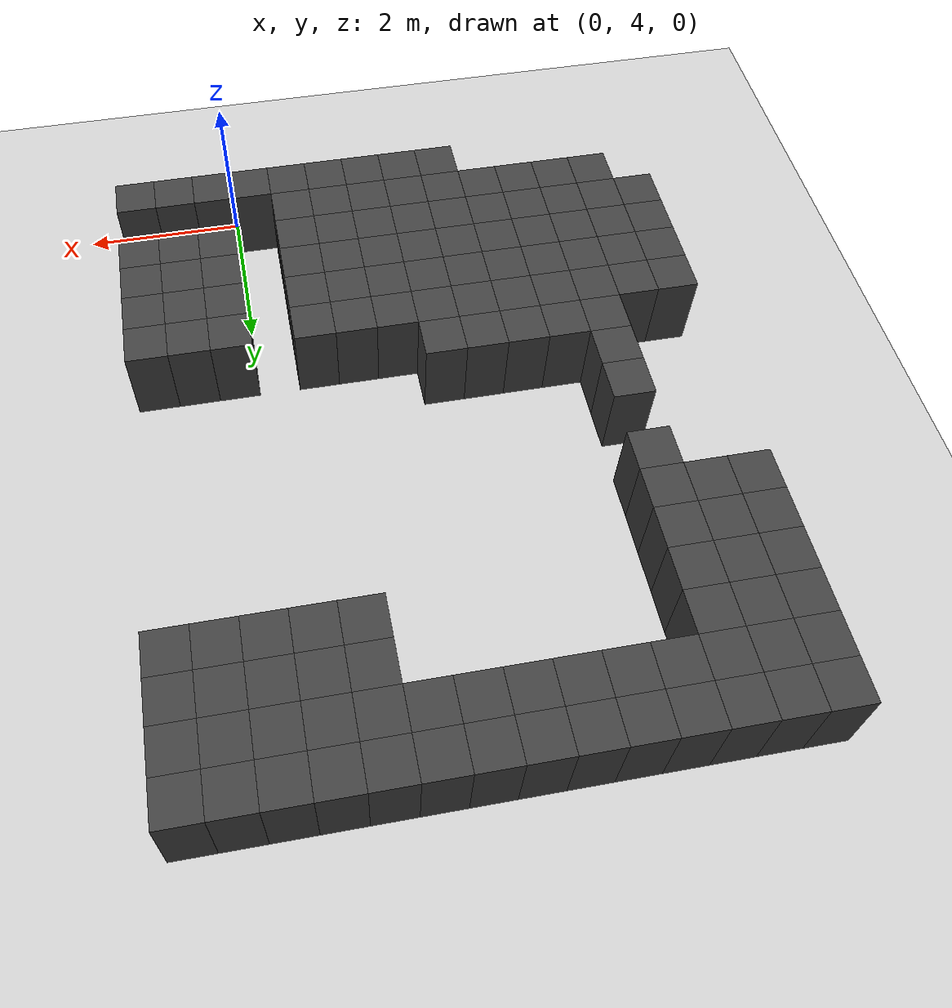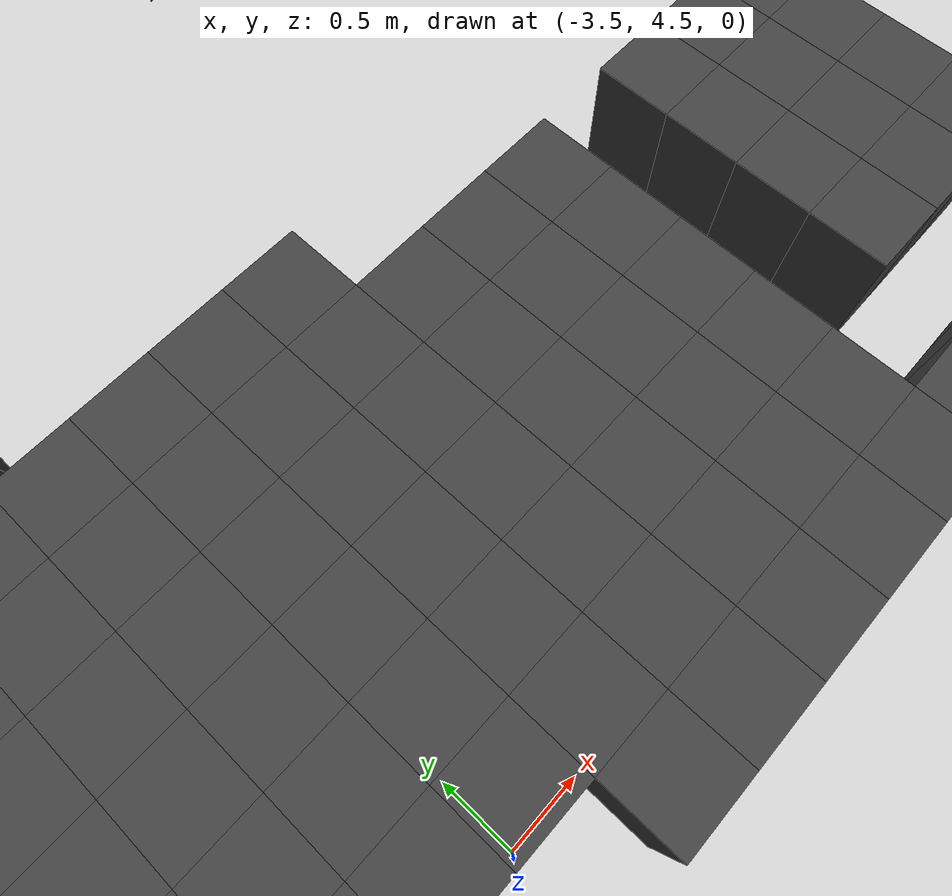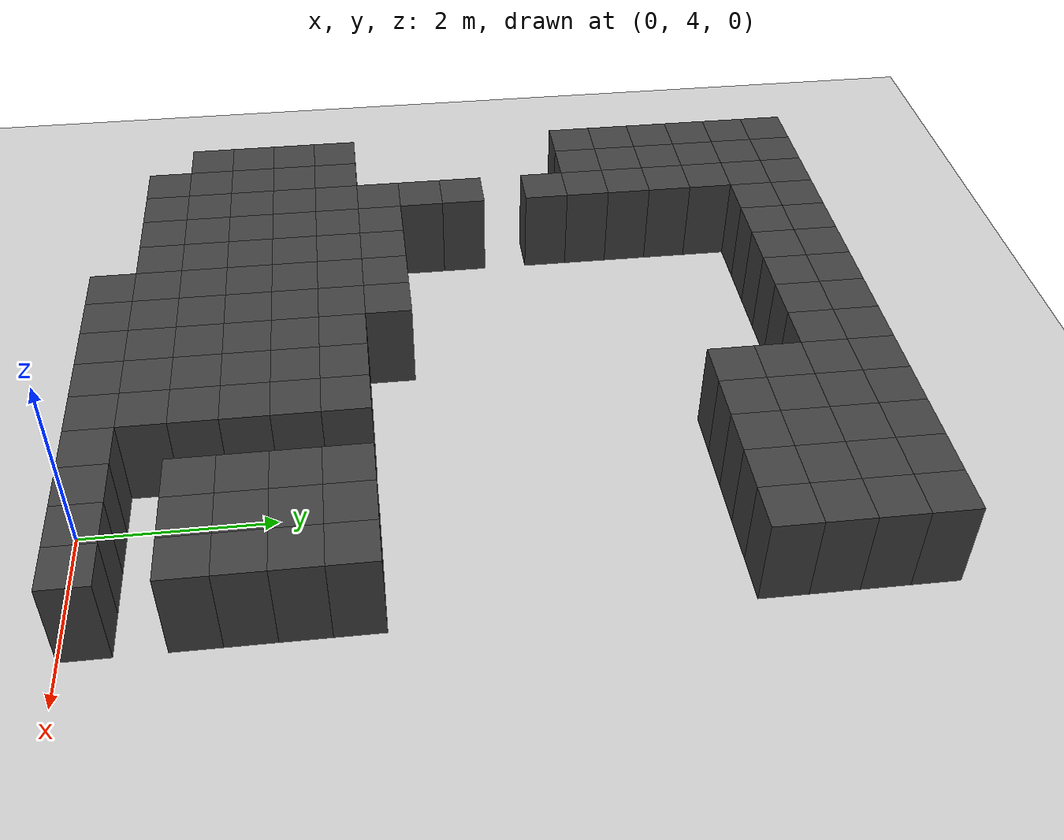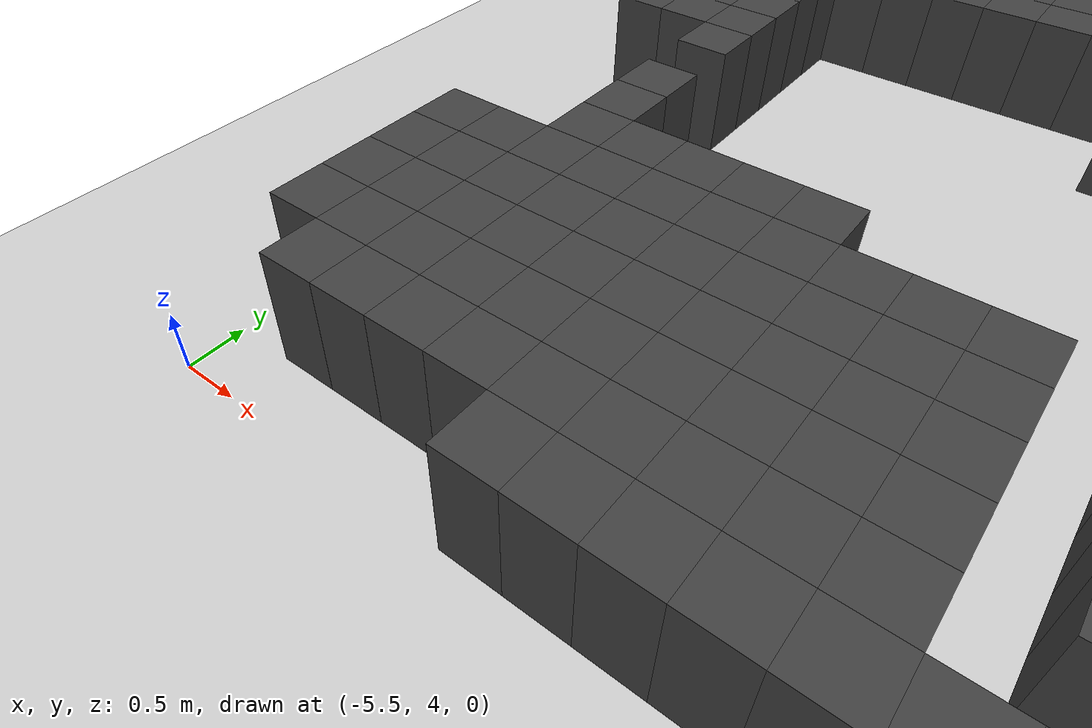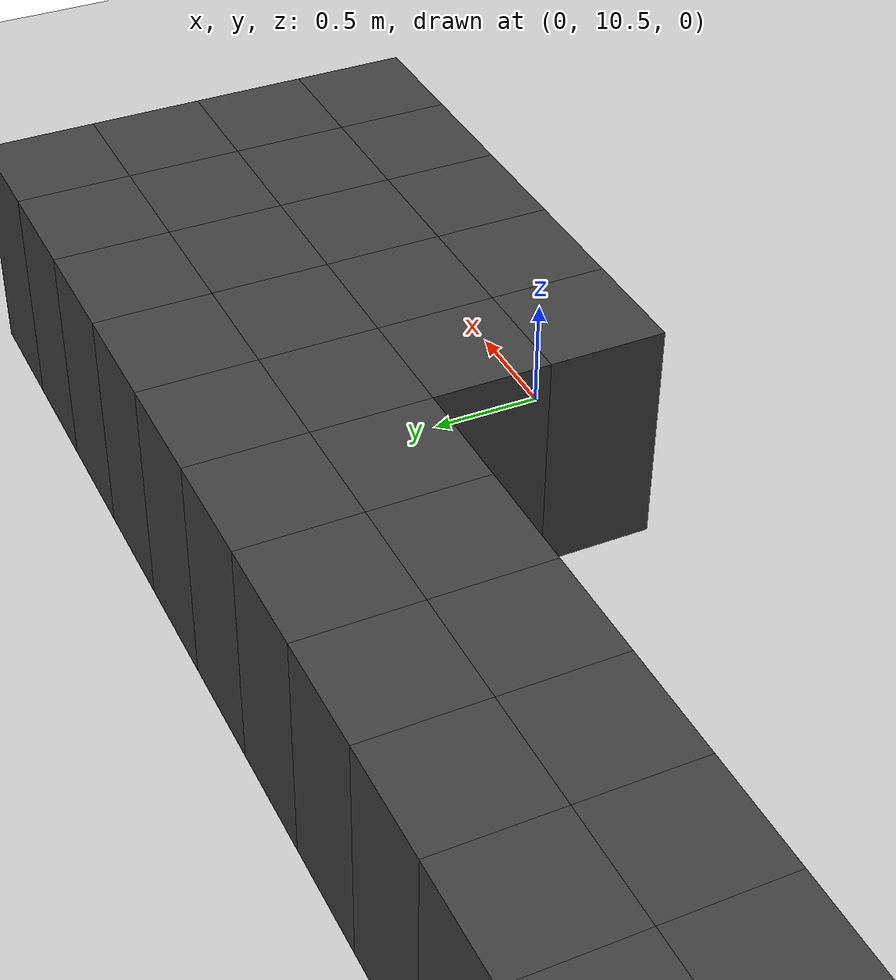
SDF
<sdf version="1.7">
 <world name="map_12356">
  <model name="ground_plane">
   <static>true</static>
   <link name="link">
    <collision name="collision">
     <geometry><plane><normal>0 0 1</normal><size>200 200</size></plane></geometry>
    </collision>
    <visual name="visual">
     <geometry><plane><normal>0 0 1</normal><size>200 200</size></plane></geometry>
     <material><ambient>0.8 0.8 0.8 1</ambient><diffuse>0.8 0.8 0.8 1</diffuse></material>
    </visual>
   </link>
  </model>
  <model name="maze_environment">
   <static>true</static>
   <link name="wall_14">
    <pose>-5.250 12.250 0.500 0 0 0</pose>
    <collision name="col"><geometry><box><size>0.5 0.5 1.0</size></box></geometry></collision>
    <visual name="vis">
     <geometry><box><size>0.5 0.5 1.0</size></box></geometry>
     <material><ambient>0.15 0.15 0.15 1</ambient><diffuse>0.25 0.25 0.25 1</diffuse></material>
    </visual>
   </link>
   <link name="wall_15">
    <pose>-4.750 12.250 0.500 0 0 0</pose>
    <collision name="col"><geometry><box><size>0.5 0.5 1.0</size></box></geometry></collision>
    <visual name="vis">
     <geometry><box><size>0.5 0.5 1.0</size></box></geometry>
     <material><ambient>0.15 0.15 0.15 1</ambient><diffuse>0.25 0.25 0.25 1</diffuse></material>
    </visual>
   </link>
   <link name="wall_16">
    <pose>-4.250 12.250 0.500 0 0 0</pose>
    <collision name="col"><geometry><box><size>0.5 0.5 1.0</size></box></geometry></collision>
    <visual name="vis">
     <geometry><box><size>0.5 0.5 1.0</size></box></geometry>
     <material><ambient>0.15 0.15 0.15 1</ambient><diffuse>0.25 0.25 0.25 1</diffuse></material>
    </visual>
   </link>
   <link name="wall_17">
    <pose>-3.750 12.250 0.500 0 0 0</pose>
    <collision name="col"><geometry><box><size>0.5 0.5 1.0</size></box></geometry></collision>
    <visual name="vis">
     <geometry><box><size>0.5 0.5 1.0</size></box></geometry>
     <material><ambient>0.15 0.15 0.15 1</ambient><diffuse>0.25 0.25 0.25 1</diffuse></material>
    </visual>
   </link>
   <link name="wall_18">
    <pose>-3.250 12.250 0.500 0 0 0</pose>
    <collision name="col"><geometry><box><size>0.5 0.5 1.0</size></box></geometry></collision>
    <visual name="vis">
     <geometry><box><size>0.5 0.5 1.0</size></box></geometry>
     <material><ambient>0.15 0.15 0.15 1</ambient><diffuse>0.25 0.25 0.25 1</diffuse></material>
    </visual>
   </link>
   <link name="wall_19">
    <pose>-2.750 12.250 0.500 0 0 0</pose>
    <collision name="col"><geometry><box><size>0.5 0.5 1.0</size></box></geometry></collision>
    <visual name="vis">
     <geometry><box><size>0.5 0.5 1.0</size></box></geometry>
     <material><ambient>0.15 0.15 0.15 1</ambient><diffuse>0.25 0.25 0.25 1</diffuse></material>
    </visual>
   </link>
   <link name="wall_20">
    <pose>-2.250 12.250 0.500 0 0 0</pose>
    <collision name="col"><geometry><box><size>0.5 0.5 1.0</size></box></geometry></collision>
    <visual name="vis">
     <geometry><box><size>0.5 0.5 1.0</size></box></geometry>
     <material><ambient>0.15 0.15 0.15 1</ambient><diffuse>0.25 0.25 0.25 1</diffuse></material>
    </visual>
   </link>
   <link name="wall_21">
    <pose>-1.750 12.250 0.500 0 0 0</pose>
    <collision name="col"><geometry><box><size>0.5 0.5 1.0</size></box></geometry></collision>
    <visual name="vis">
     <geometry><box><size>0.5 0.5 1.0</size></box></geometry>
     <material><ambient>0.15 0.15 0.15 1</ambient><diffuse>0.25 0.25 0.25 1</diffuse></material>
    </visual>
   </link>
   <link name="wall_22">
    <pose>-1.250 12.250 0.500 0 0 0</pose>
    <collision name="col"><geometry><box><size>0.5 0.5 1.0</size></box></geometry></collision>
    <visual name="vis">
     <geometry><box><size>0.5 0.5 1.0</size></box></geometry>
     <material><ambient>0.15 0.15 0.15 1</ambient><diffuse>0.25 0.25 0.25 1</diffuse></material>
    </visual>
   </link>
   <link name="wall_23">
    <pose>-0.750 12.250 0.500 0 0 0</pose>
    <collision name="col"><geometry><box><size>0.5 0.5 1.0</size></box></geometry></collision>
    <visual name="vis">
     <geometry><box><size>0.5 0.5 1.0</size></box></geometry>
     <material><ambient>0.15 0.15 0.15 1</ambient><diffuse>0.25 0.25 0.25 1</diffuse></material>
    </visual>
   </link>
   <link name="wall_24">
    <pose>-0.250 12.250 0.500 0 0 0</pose>
    <collision name="col"><geometry><box><size>0.5 0.5 1.0</size></box></geometry></collision>
    <visual name="vis">
     <geometry><box><size>0.5 0.5 1.0</size></box></geometry>
     <material><ambient>0.15 0.15 0.15 1</ambient><diffuse>0.25 0.25 0.25 1</diffuse></material>
    </visual>
   </link>
   <link name="wall_25">
    <pose>0.250 12.250 0.500 0 0 0</pose>
    <collision name="col"><geometry><box><size>0.5 0.5 1.0</size></box></geometry></collision>
    <visual name="vis">
     <geometry><box><size>0.5 0.5 1.0</size></box></geometry>
     <material><ambient>0.15 0.15 0.15 1</ambient><diffuse>0.25 0.25 0.25 1</diffuse></material>
    </visual>
   </link>
   <link name="wall_26">
    <pose>0.750 12.250 0.500 0 0 0</pose>
    <collision name="col"><geometry><box><size>0.5 0.5 1.0</size></box></geometry></collision>
    <visual name="vis">
     <geometry><box><size>0.5 0.5 1.0</size></box></geometry>
     <material><ambient>0.15 0.15 0.15 1</ambient><diffuse>0.25 0.25 0.25 1</diffuse></material>
    </visual>
   </link>
   <link name="wall_27">
    <pose>1.250 12.250 0.500 0 0 0</pose>
    <collision name="col"><geometry><box><size>0.5 0.5 1.0</size></box></geometry></collision>
    <visual name="vis">
     <geometry><box><size>0.5 0.5 1.0</size></box></geometry>
     <material><ambient>0.15 0.15 0.15 1</ambient><diffuse>0.25 0.25 0.25 1</diffuse></material>
    </visual>
   </link>
   <link name="wall_61">
    <pose>-5.250 11.750 0.500 0 0 0</pose>
    <collision name="col"><geometry><box><size>0.5 0.5 1.0</size></box></geometry></collision>
    <visual name="vis">
     <geometry><box><size>0.5 0.5 1.0</size></box></geometry>
     <material><ambient>0.15 0.15 0.15 1</ambient><diffuse>0.25 0.25 0.25 1</diffuse></material>
    </visual>
   </link>
   <link name="wall_62">
    <pose>-4.750 11.750 0.500 0 0 0</pose>
    <collision name="col"><geometry><box><size>0.5 0.5 1.0</size></box></geometry></collision>
    <visual name="vis">
     <geometry><box><size>0.5 0.5 1.0</size></box></geometry>
     <material><ambient>0.15 0.15 0.15 1</ambient><diffuse>0.25 0.25 0.25 1</diffuse></material>
    </visual>
   </link>
   <link name="wall_63">
    <pose>-4.250 11.750 0.500 0 0 0</pose>
    <collision name="col"><geometry><box><size>0.5 0.5 1.0</size></box></geometry></collision>
    <visual name="vis">
     <geometry><box><size>0.5 0.5 1.0</size></box></geometry>
     <material><ambient>0.15 0.15 0.15 1</ambient><diffuse>0.25 0.25 0.25 1</diffuse></material>
    </visual>
   </link>
   <link name="wall_64">
    <pose>-3.750 11.750 0.500 0 0 0</pose>
    <collision name="col"><geometry><box><size>0.5 0.5 1.0</size></box></geometry></collision>
    <visual name="vis">
     <geometry><box><size>0.5 0.5 1.0</size></box></geometry>
     <material><ambient>0.15 0.15 0.15 1</ambient><diffuse>0.25 0.25 0.25 1</diffuse></material>
    </visual>
   </link>
   <link name="wall_65">
    <pose>-3.250 11.750 0.500 0 0 0</pose>
    <collision name="col"><geometry><box><size>0.5 0.5 1.0</size></box></geometry></collision>
    <visual name="vis">
     <geometry><box><size>0.5 0.5 1.0</size></box></geometry>
     <material><ambient>0.15 0.15 0.15 1</ambient><diffuse>0.25 0.25 0.25 1</diffuse></material>
    </visual>
   </link>
   <link name="wall_66">
    <pose>-2.750 11.750 0.500 0 0 0</pose>
    <collision name="col"><geometry><box><size>0.5 0.5 1.0</size></box></geometry></collision>
    <visual name="vis">
     <geometry><box><size>0.5 0.5 1.0</size></box></geometry>
     <material><ambient>0.15 0.15 0.15 1</ambient><diffuse>0.25 0.25 0.25 1</diffuse></material>
    </visual>
   </link>
   <link name="wall_67">
    <pose>-2.250 11.750 0.500 0 0 0</pose>
    <collision name="col"><geometry><box><size>0.5 0.5 1.0</size></box></geometry></collision>
    <visual name="vis">
     <geometry><box><size>0.5 0.5 1.0</size></box></geometry>
     <material><ambient>0.15 0.15 0.15 1</ambient><diffuse>0.25 0.25 0.25 1</diffuse></material>
    </visual>
   </link>
   <link name="wall_68">
    <pose>-1.750 11.750 0.500 0 0 0</pose>
    <collision name="col"><geometry><box><size>0.5 0.5 1.0</size></box></geometry></collision>
    <visual name="vis">
     <geometry><box><size>0.5 0.5 1.0</size></box></geometry>
     <material><ambient>0.15 0.15 0.15 1</ambient><diffuse>0.25 0.25 0.25 1</diffuse></material>
    </visual>
   </link>
   <link name="wall_69">
    <pose>-1.250 11.750 0.500 0 0 0</pose>
    <collision name="col"><geometry><box><size>0.5 0.5 1.0</size></box></geometry></collision>
    <visual name="vis">
     <geometry><box><size>0.5 0.5 1.0</size></box></geometry>
     <material><ambient>0.15 0.15 0.15 1</ambient><diffuse>0.25 0.25 0.25 1</diffuse></material>
    </visual>
   </link>
   <link name="wall_70">
    <pose>-0.750 11.750 0.500 0 0 0</pose>
    <collision name="col"><geometry><box><size>0.5 0.5 1.0</size></box></geometry></collision>
    <visual name="vis">
     <geometry><box><size>0.5 0.5 1.0</size></box></geometry>
     <material><ambient>0.15 0.15 0.15 1</ambient><diffuse>0.25 0.25 0.25 1</diffuse></material>
    </visual>
   </link>
   <link name="wall_71">
    <pose>-0.250 11.750 0.500 0 0 0</pose>
    <collision name="col"><geometry><box><size>0.5 0.5 1.0</size></box></geometry></collision>
    <visual name="vis">
     <geometry><box><size>0.5 0.5 1.0</size></box></geometry>
     <material><ambient>0.15 0.15 0.15 1</ambient><diffuse>0.25 0.25 0.25 1</diffuse></material>
    </visual>
   </link>
   <link name="wall_72">
    <pose>0.250 11.750 0.500 0 0 0</pose>
    <collision name="col"><geometry><box><size>0.5 0.5 1.0</size></box></geometry></collision>
    <visual name="vis">
     <geometry><box><size>0.5 0.5 1.0</size></box></geometry>
     <material><ambient>0.15 0.15 0.15 1</ambient><diffuse>0.25 0.25 0.25 1</diffuse></material>
    </visual>
   </link>
   <link name="wall_73">
    <pose>0.750 11.750 0.500 0 0 0</pose>
    <collision name="col"><geometry><box><size>0.5 0.5 1.0</size></box></geometry></collision>
    <visual name="vis">
     <geometry><box><size>0.5 0.5 1.0</size></box></geometry>
     <material><ambient>0.15 0.15 0.15 1</ambient><diffuse>0.25 0.25 0.25 1</diffuse></material>
    </visual>
   </link>
   <link name="wall_74">
    <pose>1.250 11.750 0.500 0 0 0</pose>
    <collision name="col"><geometry><box><size>0.5 0.5 1.0</size></box></geometry></collision>
    <visual name="vis">
     <geometry><box><size>0.5 0.5 1.0</size></box></geometry>
     <material><ambient>0.15 0.15 0.15 1</ambient><diffuse>0.25 0.25 0.25 1</diffuse></material>
    </visual>
   </link>
   <link name="wall_108">
    <pose>-5.250 11.250 0.500 0 0 0</pose>
    <collision name="col"><geometry><box><size>0.5 0.5 1.0</size></box></geometry></collision>
    <visual name="vis">
     <geometry><box><size>0.5 0.5 1.0</size></box></geometry>
     <material><ambient>0.15 0.15 0.15 1</ambient><diffuse>0.25 0.25 0.25 1</diffuse></material>
    </visual>
   </link>
   <link name="wall_109">
    <pose>-4.750 11.250 0.500 0 0 0</pose>
    <collision name="col"><geometry><box><size>0.5 0.5 1.0</size></box></geometry></collision>
    <visual name="vis">
     <geometry><box><size>0.5 0.5 1.0</size></box></geometry>
     <material><ambient>0.15 0.15 0.15 1</ambient><diffuse>0.25 0.25 0.25 1</diffuse></material>
    </visual>
   </link>
   <link name="wall_110">
    <pose>-4.250 11.250 0.500 0 0 0</pose>
    <collision name="col"><geometry><box><size>0.5 0.5 1.0</size></box></geometry></collision>
    <visual name="vis">
     <geometry><box><size>0.5 0.5 1.0</size></box></geometry>
     <material><ambient>0.15 0.15 0.15 1</ambient><diffuse>0.25 0.25 0.25 1</diffuse></material>
    </visual>
   </link>
   <link name="wall_111">
    <pose>-0.750 11.250 0.500 0 0 0</pose>
    <collision name="col"><geometry><box><size>0.5 0.5 1.0</size></box></geometry></collision>
    <visual name="vis">
     <geometry><box><size>0.5 0.5 1.0</size></box></geometry>
     <material><ambient>0.15 0.15 0.15 1</ambient><diffuse>0.25 0.25 0.25 1</diffuse></material>
    </visual>
   </link>
   <link name="wall_112">
    <pose>-0.250 11.250 0.500 0 0 0</pose>
    <collision name="col"><geometry><box><size>0.5 0.5 1.0</size></box></geometry></collision>
    <visual name="vis">
     <geometry><box><size>0.5 0.5 1.0</size></box></geometry>
     <material><ambient>0.15 0.15 0.15 1</ambient><diffuse>0.25 0.25 0.25 1</diffuse></material>
    </visual>
   </link>
   <link name="wall_113">
    <pose>0.250 11.250 0.500 0 0 0</pose>
    <collision name="col"><geometry><box><size>0.5 0.5 1.0</size></box></geometry></collision>
    <visual name="vis">
     <geometry><box><size>0.5 0.5 1.0</size></box></geometry>
     <material><ambient>0.15 0.15 0.15 1</ambient><diffuse>0.25 0.25 0.25 1</diffuse></material>
    </visual>
   </link>
   <link name="wall_114">
    <pose>0.750 11.250 0.500 0 0 0</pose>
    <collision name="col"><geometry><box><size>0.5 0.5 1.0</size></box></geometry></collision>
    <visual name="vis">
     <geometry><box><size>0.5 0.5 1.0</size></box></geometry>
     <material><ambient>0.15 0.15 0.15 1</ambient><diffuse>0.25 0.25 0.25 1</diffuse></material>
    </visual>
   </link>
   <link name="wall_115">
    <pose>1.250 11.250 0.500 0 0 0</pose>
    <collision name="col"><geometry><box><size>0.5 0.5 1.0</size></box></geometry></collision>
    <visual name="vis">
     <geometry><box><size>0.5 0.5 1.0</size></box></geometry>
     <material><ambient>0.15 0.15 0.15 1</ambient><diffuse>0.25 0.25 0.25 1</diffuse></material>
    </visual>
   </link>
   <link name="wall_149">
    <pose>-5.250 10.750 0.500 0 0 0</pose>
    <collision name="col"><geometry><box><size>0.5 0.5 1.0</size></box></geometry></collision>
    <visual name="vis">
     <geometry><box><size>0.5 0.5 1.0</size></box></geometry>
     <material><ambient>0.15 0.15 0.15 1</ambient><diffuse>0.25 0.25 0.25 1</diffuse></material>
    </visual>
   </link>
   <link name="wall_150">
    <pose>-4.750 10.750 0.500 0 0 0</pose>
    <collision name="col"><geometry><box><size>0.5 0.5 1.0</size></box></geometry></collision>
    <visual name="vis">
     <geometry><box><size>0.5 0.5 1.0</size></box></geometry>
     <material><ambient>0.15 0.15 0.15 1</ambient><diffuse>0.25 0.25 0.25 1</diffuse></material>
    </visual>
   </link>
   <link name="wall_151">
    <pose>-4.250 10.750 0.500 0 0 0</pose>
    <collision name="col"><geometry><box><size>0.5 0.5 1.0</size></box></geometry></collision>
    <visual name="vis">
     <geometry><box><size>0.5 0.5 1.0</size></box></geometry>
     <material><ambient>0.15 0.15 0.15 1</ambient><diffuse>0.25 0.25 0.25 1</diffuse></material>
    </visual>
   </link>
   <link name="wall_152">
    <pose>-0.750 10.750 0.500 0 0 0</pose>
    <collision name="col"><geometry><box><size>0.5 0.5 1.0</size></box></geometry></collision>
    <visual name="vis">
     <geometry><box><size>0.5 0.5 1.0</size></box></geometry>
     <material><ambient>0.15 0.15 0.15 1</ambient><diffuse>0.25 0.25 0.25 1</diffuse></material>
    </visual>
   </link>
   <link name="wall_153">
    <pose>-0.250 10.750 0.500 0 0 0</pose>
    <collision name="col"><geometry><box><size>0.5 0.5 1.0</size></box></geometry></collision>
    <visual name="vis">
     <geometry><box><size>0.5 0.5 1.0</size></box></geometry>
     <material><ambient>0.15 0.15 0.15 1</ambient><diffuse>0.25 0.25 0.25 1</diffuse></material>
    </visual>
   </link>
   <link name="wall_154">
    <pose>0.250 10.750 0.500 0 0 0</pose>
    <collision name="col"><geometry><box><size>0.5 0.5 1.0</size></box></geometry></collision>
    <visual name="vis">
     <geometry><box><size>0.5 0.5 1.0</size></box></geometry>
     <material><ambient>0.15 0.15 0.15 1</ambient><diffuse>0.25 0.25 0.25 1</diffuse></material>
    </visual>
   </link>
   <link name="wall_155">
    <pose>0.750 10.750 0.500 0 0 0</pose>
    <collision name="col"><geometry><box><size>0.5 0.5 1.0</size></box></geometry></collision>
    <visual name="vis">
     <geometry><box><size>0.5 0.5 1.0</size></box></geometry>
     <material><ambient>0.15 0.15 0.15 1</ambient><diffuse>0.25 0.25 0.25 1</diffuse></material>
    </visual>
   </link>
   <link name="wall_156">
    <pose>1.250 10.750 0.500 0 0 0</pose>
    <collision name="col"><geometry><box><size>0.5 0.5 1.0</size></box></geometry></collision>
    <visual name="vis">
     <geometry><box><size>0.5 0.5 1.0</size></box></geometry>
     <material><ambient>0.15 0.15 0.15 1</ambient><diffuse>0.25 0.25 0.25 1</diffuse></material>
    </visual>
   </link>
   <link name="wall_186">
    <pose>-5.250 10.250 0.500 0 0 0</pose>
    <collision name="col"><geometry><box><size>0.5 0.5 1.0</size></box></geometry></collision>
    <visual name="vis">
     <geometry><box><size>0.5 0.5 1.0</size></box></geometry>
     <material><ambient>0.15 0.15 0.15 1</ambient><diffuse>0.25 0.25 0.25 1</diffuse></material>
    </visual>
   </link>
   <link name="wall_187">
    <pose>-4.750 10.250 0.500 0 0 0</pose>
    <collision name="col"><geometry><box><size>0.5 0.5 1.0</size></box></geometry></collision>
    <visual name="vis">
     <geometry><box><size>0.5 0.5 1.0</size></box></geometry>
     <material><ambient>0.15 0.15 0.15 1</ambient><diffuse>0.25 0.25 0.25 1</diffuse></material>
    </visual>
   </link>
   <link name="wall_188">
    <pose>-4.250 10.250 0.500 0 0 0</pose>
    <collision name="col"><geometry><box><size>0.5 0.5 1.0</size></box></geometry></collision>
    <visual name="vis">
     <geometry><box><size>0.5 0.5 1.0</size></box></geometry>
     <material><ambient>0.15 0.15 0.15 1</ambient><diffuse>0.25 0.25 0.25 1</diffuse></material>
    </visual>
   </link>
   <link name="wall_218">
    <pose>-5.250 9.750 0.500 0 0 0</pose>
    <collision name="col"><geometry><box><size>0.5 0.5 1.0</size></box></geometry></collision>
    <visual name="vis">
     <geometry><box><size>0.5 0.5 1.0</size></box></geometry>
     <material><ambient>0.15 0.15 0.15 1</ambient><diffuse>0.25 0.25 0.25 1</diffuse></material>
    </visual>
   </link>
   <link name="wall_219">
    <pose>-4.750 9.750 0.500 0 0 0</pose>
    <collision name="col"><geometry><box><size>0.5 0.5 1.0</size></box></geometry></collision>
    <visual name="vis">
     <geometry><box><size>0.5 0.5 1.0</size></box></geometry>
     <material><ambient>0.15 0.15 0.15 1</ambient><diffuse>0.25 0.25 0.25 1</diffuse></material>
    </visual>
   </link>
   <link name="wall_220">
    <pose>-4.250 9.750 0.500 0 0 0</pose>
    <collision name="col"><geometry><box><size>0.5 0.5 1.0</size></box></geometry></collision>
    <visual name="vis">
     <geometry><box><size>0.5 0.5 1.0</size></box></geometry>
     <material><ambient>0.15 0.15 0.15 1</ambient><diffuse>0.25 0.25 0.25 1</diffuse></material>
    </visual>
   </link>
   <link name="wall_245">
    <pose>-4.250 9.250 0.500 0 0 0</pose>
    <collision name="col"><geometry><box><size>0.5 0.5 1.0</size></box></geometry></collision>
    <visual name="vis">
     <geometry><box><size>0.5 0.5 1.0</size></box></geometry>
     <material><ambient>0.15 0.15 0.15 1</ambient><diffuse>0.25 0.25 0.25 1</diffuse></material>
    </visual>
   </link>
   <link name="wall_294">
    <pose>-4.250 8.250 0.500 0 0 0</pose>
    <collision name="col"><geometry><box><size>0.5 0.5 1.0</size></box></geometry></collision>
    <visual name="vis">
     <geometry><box><size>0.5 0.5 1.0</size></box></geometry>
     <material><ambient>0.15 0.15 0.15 1</ambient><diffuse>0.25 0.25 0.25 1</diffuse></material>
    </visual>
   </link>
   <link name="wall_323">
    <pose>-4.250 7.750 0.500 0 0 0</pose>
    <collision name="col"><geometry><box><size>0.5 0.5 1.0</size></box></geometry></collision>
    <visual name="vis">
     <geometry><box><size>0.5 0.5 1.0</size></box></geometry>
     <material><ambient>0.15 0.15 0.15 1</ambient><diffuse>0.25 0.25 0.25 1</diffuse></material>
    </visual>
   </link>
   <link name="wall_355">
    <pose>-4.250 7.250 0.500 0 0 0</pose>
    <collision name="col"><geometry><box><size>0.5 0.5 1.0</size></box></geometry></collision>
    <visual name="vis">
     <geometry><box><size>0.5 0.5 1.0</size></box></geometry>
     <material><ambient>0.15 0.15 0.15 1</ambient><diffuse>0.25 0.25 0.25 1</diffuse></material>
    </visual>
   </link>
   <link name="wall_356">
    <pose>-3.750 7.250 0.500 0 0 0</pose>
    <collision name="col"><geometry><box><size>0.5 0.5 1.0</size></box></geometry></collision>
    <visual name="vis">
     <geometry><box><size>0.5 0.5 1.0</size></box></geometry>
     <material><ambient>0.15 0.15 0.15 1</ambient><diffuse>0.25 0.25 0.25 1</diffuse></material>
    </visual>
   </link>
   <link name="wall_357">
    <pose>-3.250 7.250 0.500 0 0 0</pose>
    <collision name="col"><geometry><box><size>0.5 0.5 1.0</size></box></geometry></collision>
    <visual name="vis">
     <geometry><box><size>0.5 0.5 1.0</size></box></geometry>
     <material><ambient>0.15 0.15 0.15 1</ambient><diffuse>0.25 0.25 0.25 1</diffuse></material>
    </visual>
   </link>
   <link name="wall_358">
    <pose>-2.750 7.250 0.500 0 0 0</pose>
    <collision name="col"><geometry><box><size>0.5 0.5 1.0</size></box></geometry></collision>
    <visual name="vis">
     <geometry><box><size>0.5 0.5 1.0</size></box></geometry>
     <material><ambient>0.15 0.15 0.15 1</ambient><diffuse>0.25 0.25 0.25 1</diffuse></material>
    </visual>
   </link>
   <link name="wall_359">
    <pose>-2.250 7.250 0.500 0 0 0</pose>
    <collision name="col"><geometry><box><size>0.5 0.5 1.0</size></box></geometry></collision>
    <visual name="vis">
     <geometry><box><size>0.5 0.5 1.0</size></box></geometry>
     <material><ambient>0.15 0.15 0.15 1</ambient><diffuse>0.25 0.25 0.25 1</diffuse></material>
    </visual>
   </link>
   <link name="wall_395">
    <pose>-5.250 6.750 0.500 0 0 0</pose>
    <collision name="col"><geometry><box><size>0.5 0.5 1.0</size></box></geometry></collision>
    <visual name="vis">
     <geometry><box><size>0.5 0.5 1.0</size></box></geometry>
     <material><ambient>0.15 0.15 0.15 1</ambient><diffuse>0.25 0.25 0.25 1</diffuse></material>
    </visual>
   </link>
   <link name="wall_396">
    <pose>-4.750 6.750 0.500 0 0 0</pose>
    <collision name="col"><geometry><box><size>0.5 0.5 1.0</size></box></geometry></collision>
    <visual name="vis">
     <geometry><box><size>0.5 0.5 1.0</size></box></geometry>
     <material><ambient>0.15 0.15 0.15 1</ambient><diffuse>0.25 0.25 0.25 1</diffuse></material>
    </visual>
   </link>
   <link name="wall_397">
    <pose>-4.250 6.750 0.500 0 0 0</pose>
    <collision name="col"><geometry><box><size>0.5 0.5 1.0</size></box></geometry></collision>
    <visual name="vis">
     <geometry><box><size>0.5 0.5 1.0</size></box></geometry>
     <material><ambient>0.15 0.15 0.15 1</ambient><diffuse>0.25 0.25 0.25 1</diffuse></material>
    </visual>
   </link>
   <link name="wall_398">
    <pose>-3.750 6.750 0.500 0 0 0</pose>
    <collision name="col"><geometry><box><size>0.5 0.5 1.0</size></box></geometry></collision>
    <visual name="vis">
     <geometry><box><size>0.5 0.5 1.0</size></box></geometry>
     <material><ambient>0.15 0.15 0.15 1</ambient><diffuse>0.25 0.25 0.25 1</diffuse></material>
    </visual>
   </link>
   <link name="wall_399">
    <pose>-3.250 6.750 0.500 0 0 0</pose>
    <collision name="col"><geometry><box><size>0.5 0.5 1.0</size></box></geometry></collision>
    <visual name="vis">
     <geometry><box><size>0.5 0.5 1.0</size></box></geometry>
     <material><ambient>0.15 0.15 0.15 1</ambient><diffuse>0.25 0.25 0.25 1</diffuse></material>
    </visual>
   </link>
   <link name="wall_400">
    <pose>-2.750 6.750 0.500 0 0 0</pose>
    <collision name="col"><geometry><box><size>0.5 0.5 1.0</size></box></geometry></collision>
    <visual name="vis">
     <geometry><box><size>0.5 0.5 1.0</size></box></geometry>
     <material><ambient>0.15 0.15 0.15 1</ambient><diffuse>0.25 0.25 0.25 1</diffuse></material>
    </visual>
   </link>
   <link name="wall_401">
    <pose>-2.250 6.750 0.500 0 0 0</pose>
    <collision name="col"><geometry><box><size>0.5 0.5 1.0</size></box></geometry></collision>
    <visual name="vis">
     <geometry><box><size>0.5 0.5 1.0</size></box></geometry>
     <material><ambient>0.15 0.15 0.15 1</ambient><diffuse>0.25 0.25 0.25 1</diffuse></material>
    </visual>
   </link>
   <link name="wall_402">
    <pose>-1.750 6.750 0.500 0 0 0</pose>
    <collision name="col"><geometry><box><size>0.5 0.5 1.0</size></box></geometry></collision>
    <visual name="vis">
     <geometry><box><size>0.5 0.5 1.0</size></box></geometry>
     <material><ambient>0.15 0.15 0.15 1</ambient><diffuse>0.25 0.25 0.25 1</diffuse></material>
    </visual>
   </link>
   <link name="wall_403">
    <pose>-1.250 6.750 0.500 0 0 0</pose>
    <collision name="col"><geometry><box><size>0.5 0.5 1.0</size></box></geometry></collision>
    <visual name="vis">
     <geometry><box><size>0.5 0.5 1.0</size></box></geometry>
     <material><ambient>0.15 0.15 0.15 1</ambient><diffuse>0.25 0.25 0.25 1</diffuse></material>
    </visual>
   </link>
   <link name="wall_404">
    <pose>-0.750 6.750 0.500 0 0 0</pose>
    <collision name="col"><geometry><box><size>0.5 0.5 1.0</size></box></geometry></collision>
    <visual name="vis">
     <geometry><box><size>0.5 0.5 1.0</size></box></geometry>
     <material><ambient>0.15 0.15 0.15 1</ambient><diffuse>0.25 0.25 0.25 1</diffuse></material>
    </visual>
   </link>
   <link name="wall_405">
    <pose>0.250 6.750 0.500 0 0 0</pose>
    <collision name="col"><geometry><box><size>0.5 0.5 1.0</size></box></geometry></collision>
    <visual name="vis">
     <geometry><box><size>0.5 0.5 1.0</size></box></geometry>
     <material><ambient>0.15 0.15 0.15 1</ambient><diffuse>0.25 0.25 0.25 1</diffuse></material>
    </visual>
   </link>
   <link name="wall_406">
    <pose>0.750 6.750 0.500 0 0 0</pose>
    <collision name="col"><geometry><box><size>0.5 0.5 1.0</size></box></geometry></collision>
    <visual name="vis">
     <geometry><box><size>0.5 0.5 1.0</size></box></geometry>
     <material><ambient>0.15 0.15 0.15 1</ambient><diffuse>0.25 0.25 0.25 1</diffuse></material>
    </visual>
   </link>
   <link name="wall_407">
    <pose>1.250 6.750 0.500 0 0 0</pose>
    <collision name="col"><geometry><box><size>0.5 0.5 1.0</size></box></geometry></collision>
    <visual name="vis">
     <geometry><box><size>0.5 0.5 1.0</size></box></geometry>
     <material><ambient>0.15 0.15 0.15 1</ambient><diffuse>0.25 0.25 0.25 1</diffuse></material>
    </visual>
   </link>
   <link name="wall_439">
    <pose>-5.250 6.250 0.500 0 0 0</pose>
    <collision name="col"><geometry><box><size>0.5 0.5 1.0</size></box></geometry></collision>
    <visual name="vis">
     <geometry><box><size>0.5 0.5 1.0</size></box></geometry>
     <material><ambient>0.15 0.15 0.15 1</ambient><diffuse>0.25 0.25 0.25 1</diffuse></material>
    </visual>
   </link>
   <link name="wall_440">
    <pose>-4.750 6.250 0.500 0 0 0</pose>
    <collision name="col"><geometry><box><size>0.5 0.5 1.0</size></box></geometry></collision>
    <visual name="vis">
     <geometry><box><size>0.5 0.5 1.0</size></box></geometry>
     <material><ambient>0.15 0.15 0.15 1</ambient><diffuse>0.25 0.25 0.25 1</diffuse></material>
    </visual>
   </link>
   <link name="wall_441">
    <pose>-4.250 6.250 0.500 0 0 0</pose>
    <collision name="col"><geometry><box><size>0.5 0.5 1.0</size></box></geometry></collision>
    <visual name="vis">
     <geometry><box><size>0.5 0.5 1.0</size></box></geometry>
     <material><ambient>0.15 0.15 0.15 1</ambient><diffuse>0.25 0.25 0.25 1</diffuse></material>
    </visual>
   </link>
   <link name="wall_442">
    <pose>-3.750 6.250 0.500 0 0 0</pose>
    <collision name="col"><geometry><box><size>0.5 0.5 1.0</size></box></geometry></collision>
    <visual name="vis">
     <geometry><box><size>0.5 0.5 1.0</size></box></geometry>
     <material><ambient>0.15 0.15 0.15 1</ambient><diffuse>0.25 0.25 0.25 1</diffuse></material>
    </visual>
   </link>
   <link name="wall_443">
    <pose>-3.250 6.250 0.500 0 0 0</pose>
    <collision name="col"><geometry><box><size>0.5 0.5 1.0</size></box></geometry></collision>
    <visual name="vis">
     <geometry><box><size>0.5 0.5 1.0</size></box></geometry>
     <material><ambient>0.15 0.15 0.15 1</ambient><diffuse>0.25 0.25 0.25 1</diffuse></material>
    </visual>
   </link>
   <link name="wall_444">
    <pose>-2.750 6.250 0.500 0 0 0</pose>
    <collision name="col"><geometry><box><size>0.5 0.5 1.0</size></box></geometry></collision>
    <visual name="vis">
     <geometry><box><size>0.5 0.5 1.0</size></box></geometry>
     <material><ambient>0.15 0.15 0.15 1</ambient><diffuse>0.25 0.25 0.25 1</diffuse></material>
    </visual>
   </link>
   <link name="wall_445">
    <pose>-2.250 6.250 0.500 0 0 0</pose>
    <collision name="col"><geometry><box><size>0.5 0.5 1.0</size></box></geometry></collision>
    <visual name="vis">
     <geometry><box><size>0.5 0.5 1.0</size></box></geometry>
     <material><ambient>0.15 0.15 0.15 1</ambient><diffuse>0.25 0.25 0.25 1</diffuse></material>
    </visual>
   </link>
   <link name="wall_446">
    <pose>-1.750 6.250 0.500 0 0 0</pose>
    <collision name="col"><geometry><box><size>0.5 0.5 1.0</size></box></geometry></collision>
    <visual name="vis">
     <geometry><box><size>0.5 0.5 1.0</size></box></geometry>
     <material><ambient>0.15 0.15 0.15 1</ambient><diffuse>0.25 0.25 0.25 1</diffuse></material>
    </visual>
   </link>
   <link name="wall_447">
    <pose>-1.250 6.250 0.500 0 0 0</pose>
    <collision name="col"><geometry><box><size>0.5 0.5 1.0</size></box></geometry></collision>
    <visual name="vis">
     <geometry><box><size>0.5 0.5 1.0</size></box></geometry>
     <material><ambient>0.15 0.15 0.15 1</ambient><diffuse>0.25 0.25 0.25 1</diffuse></material>
    </visual>
   </link>
   <link name="wall_448">
    <pose>-0.750 6.250 0.500 0 0 0</pose>
    <collision name="col"><geometry><box><size>0.5 0.5 1.0</size></box></geometry></collision>
    <visual name="vis">
     <geometry><box><size>0.5 0.5 1.0</size></box></geometry>
     <material><ambient>0.15 0.15 0.15 1</ambient><diffuse>0.25 0.25 0.25 1</diffuse></material>
    </visual>
   </link>
   <link name="wall_449">
    <pose>0.250 6.250 0.500 0 0 0</pose>
    <collision name="col"><geometry><box><size>0.5 0.5 1.0</size></box></geometry></collision>
    <visual name="vis">
     <geometry><box><size>0.5 0.5 1.0</size></box></geometry>
     <material><ambient>0.15 0.15 0.15 1</ambient><diffuse>0.25 0.25 0.25 1</diffuse></material>
    </visual>
   </link>
   <link name="wall_450">
    <pose>0.750 6.250 0.500 0 0 0</pose>
    <collision name="col"><geometry><box><size>0.5 0.5 1.0</size></box></geometry></collision>
    <visual name="vis">
     <geometry><box><size>0.5 0.5 1.0</size></box></geometry>
     <material><ambient>0.15 0.15 0.15 1</ambient><diffuse>0.25 0.25 0.25 1</diffuse></material>
    </visual>
   </link>
   <link name="wall_451">
    <pose>1.250 6.250 0.500 0 0 0</pose>
    <collision name="col"><geometry><box><size>0.5 0.5 1.0</size></box></geometry></collision>
    <visual name="vis">
     <geometry><box><size>0.5 0.5 1.0</size></box></geometry>
     <material><ambient>0.15 0.15 0.15 1</ambient><diffuse>0.25 0.25 0.25 1</diffuse></material>
    </visual>
   </link>
   <link name="wall_483">
    <pose>-5.250 5.750 0.500 0 0 0</pose>
    <collision name="col"><geometry><box><size>0.5 0.5 1.0</size></box></geometry></collision>
    <visual name="vis">
     <geometry><box><size>0.5 0.5 1.0</size></box></geometry>
     <material><ambient>0.15 0.15 0.15 1</ambient><diffuse>0.25 0.25 0.25 1</diffuse></material>
    </visual>
   </link>
   <link name="wall_484">
    <pose>-4.750 5.750 0.500 0 0 0</pose>
    <collision name="col"><geometry><box><size>0.5 0.5 1.0</size></box></geometry></collision>
    <visual name="vis">
     <geometry><box><size>0.5 0.5 1.0</size></box></geometry>
     <material><ambient>0.15 0.15 0.15 1</ambient><diffuse>0.25 0.25 0.25 1</diffuse></material>
    </visual>
   </link>
   <link name="wall_485">
    <pose>-4.250 5.750 0.500 0 0 0</pose>
    <collision name="col"><geometry><box><size>0.5 0.5 1.0</size></box></geometry></collision>
    <visual name="vis">
     <geometry><box><size>0.5 0.5 1.0</size></box></geometry>
     <material><ambient>0.15 0.15 0.15 1</ambient><diffuse>0.25 0.25 0.25 1</diffuse></material>
    </visual>
   </link>
   <link name="wall_486">
    <pose>-3.750 5.750 0.500 0 0 0</pose>
    <collision name="col"><geometry><box><size>0.5 0.5 1.0</size></box></geometry></collision>
    <visual name="vis">
     <geometry><box><size>0.5 0.5 1.0</size></box></geometry>
     <material><ambient>0.15 0.15 0.15 1</ambient><diffuse>0.25 0.25 0.25 1</diffuse></material>
    </visual>
   </link>
   <link name="wall_487">
    <pose>-3.250 5.750 0.500 0 0 0</pose>
    <collision name="col"><geometry><box><size>0.5 0.5 1.0</size></box></geometry></collision>
    <visual name="vis">
     <geometry><box><size>0.5 0.5 1.0</size></box></geometry>
     <material><ambient>0.15 0.15 0.15 1</ambient><diffuse>0.25 0.25 0.25 1</diffuse></material>
    </visual>
   </link>
   <link name="wall_488">
    <pose>-2.750 5.750 0.500 0 0 0</pose>
    <collision name="col"><geometry><box><size>0.5 0.5 1.0</size></box></geometry></collision>
    <visual name="vis">
     <geometry><box><size>0.5 0.5 1.0</size></box></geometry>
     <material><ambient>0.15 0.15 0.15 1</ambient><diffuse>0.25 0.25 0.25 1</diffuse></material>
    </visual>
   </link>
   <link name="wall_489">
    <pose>-2.250 5.750 0.500 0 0 0</pose>
    <collision name="col"><geometry><box><size>0.5 0.5 1.0</size></box></geometry></collision>
    <visual name="vis">
     <geometry><box><size>0.5 0.5 1.0</size></box></geometry>
     <material><ambient>0.15 0.15 0.15 1</ambient><diffuse>0.25 0.25 0.25 1</diffuse></material>
    </visual>
   </link>
   <link name="wall_490">
    <pose>-1.750 5.750 0.500 0 0 0</pose>
    <collision name="col"><geometry><box><size>0.5 0.5 1.0</size></box></geometry></collision>
    <visual name="vis">
     <geometry><box><size>0.5 0.5 1.0</size></box></geometry>
     <material><ambient>0.15 0.15 0.15 1</ambient><diffuse>0.25 0.25 0.25 1</diffuse></material>
    </visual>
   </link>
   <link name="wall_491">
    <pose>-1.250 5.750 0.500 0 0 0</pose>
    <collision name="col"><geometry><box><size>0.5 0.5 1.0</size></box></geometry></collision>
    <visual name="vis">
     <geometry><box><size>0.5 0.5 1.0</size></box></geometry>
     <material><ambient>0.15 0.15 0.15 1</ambient><diffuse>0.25 0.25 0.25 1</diffuse></material>
    </visual>
   </link>
   <link name="wall_492">
    <pose>-0.750 5.750 0.500 0 0 0</pose>
    <collision name="col"><geometry><box><size>0.5 0.5 1.0</size></box></geometry></collision>
    <visual name="vis">
     <geometry><box><size>0.5 0.5 1.0</size></box></geometry>
     <material><ambient>0.15 0.15 0.15 1</ambient><diffuse>0.25 0.25 0.25 1</diffuse></material>
    </visual>
   </link>
   <link name="wall_493">
    <pose>0.250 5.750 0.500 0 0 0</pose>
    <collision name="col"><geometry><box><size>0.5 0.5 1.0</size></box></geometry></collision>
    <visual name="vis">
     <geometry><box><size>0.5 0.5 1.0</size></box></geometry>
     <material><ambient>0.15 0.15 0.15 1</ambient><diffuse>0.25 0.25 0.25 1</diffuse></material>
    </visual>
   </link>
   <link name="wall_494">
    <pose>0.750 5.750 0.500 0 0 0</pose>
    <collision name="col"><geometry><box><size>0.5 0.5 1.0</size></box></geometry></collision>
    <visual name="vis">
     <geometry><box><size>0.5 0.5 1.0</size></box></geometry>
     <material><ambient>0.15 0.15 0.15 1</ambient><diffuse>0.25 0.25 0.25 1</diffuse></material>
    </visual>
   </link>
   <link name="wall_495">
    <pose>1.250 5.750 0.500 0 0 0</pose>
    <collision name="col"><geometry><box><size>0.5 0.5 1.0</size></box></geometry></collision>
    <visual name="vis">
     <geometry><box><size>0.5 0.5 1.0</size></box></geometry>
     <material><ambient>0.15 0.15 0.15 1</ambient><diffuse>0.25 0.25 0.25 1</diffuse></material>
    </visual>
   </link>
   <link name="wall_527">
    <pose>-5.250 5.250 0.500 0 0 0</pose>
    <collision name="col"><geometry><box><size>0.5 0.5 1.0</size></box></geometry></collision>
    <visual name="vis">
     <geometry><box><size>0.5 0.5 1.0</size></box></geometry>
     <material><ambient>0.15 0.15 0.15 1</ambient><diffuse>0.25 0.25 0.25 1</diffuse></material>
    </visual>
   </link>
   <link name="wall_528">
    <pose>-4.750 5.250 0.500 0 0 0</pose>
    <collision name="col"><geometry><box><size>0.5 0.5 1.0</size></box></geometry></collision>
    <visual name="vis">
     <geometry><box><size>0.5 0.5 1.0</size></box></geometry>
     <material><ambient>0.15 0.15 0.15 1</ambient><diffuse>0.25 0.25 0.25 1</diffuse></material>
    </visual>
   </link>
   <link name="wall_529">
    <pose>-4.250 5.250 0.500 0 0 0</pose>
    <collision name="col"><geometry><box><size>0.5 0.5 1.0</size></box></geometry></collision>
    <visual name="vis">
     <geometry><box><size>0.5 0.5 1.0</size></box></geometry>
     <material><ambient>0.15 0.15 0.15 1</ambient><diffuse>0.25 0.25 0.25 1</diffuse></material>
    </visual>
   </link>
   <link name="wall_530">
    <pose>-3.750 5.250 0.500 0 0 0</pose>
    <collision name="col"><geometry><box><size>0.5 0.5 1.0</size></box></geometry></collision>
    <visual name="vis">
     <geometry><box><size>0.5 0.5 1.0</size></box></geometry>
     <material><ambient>0.15 0.15 0.15 1</ambient><diffuse>0.25 0.25 0.25 1</diffuse></material>
    </visual>
   </link>
   <link name="wall_531">
    <pose>-3.250 5.250 0.500 0 0 0</pose>
    <collision name="col"><geometry><box><size>0.5 0.5 1.0</size></box></geometry></collision>
    <visual name="vis">
     <geometry><box><size>0.5 0.5 1.0</size></box></geometry>
     <material><ambient>0.15 0.15 0.15 1</ambient><diffuse>0.25 0.25 0.25 1</diffuse></material>
    </visual>
   </link>
   <link name="wall_532">
    <pose>-2.750 5.250 0.500 0 0 0</pose>
    <collision name="col"><geometry><box><size>0.5 0.5 1.0</size></box></geometry></collision>
    <visual name="vis">
     <geometry><box><size>0.5 0.5 1.0</size></box></geometry>
     <material><ambient>0.15 0.15 0.15 1</ambient><diffuse>0.25 0.25 0.25 1</diffuse></material>
    </visual>
   </link>
   <link name="wall_533">
    <pose>-2.250 5.250 0.500 0 0 0</pose>
    <collision name="col"><geometry><box><size>0.5 0.5 1.0</size></box></geometry></collision>
    <visual name="vis">
     <geometry><box><size>0.5 0.5 1.0</size></box></geometry>
     <material><ambient>0.15 0.15 0.15 1</ambient><diffuse>0.25 0.25 0.25 1</diffuse></material>
    </visual>
   </link>
   <link name="wall_534">
    <pose>-1.750 5.250 0.500 0 0 0</pose>
    <collision name="col"><geometry><box><size>0.5 0.5 1.0</size></box></geometry></collision>
    <visual name="vis">
     <geometry><box><size>0.5 0.5 1.0</size></box></geometry>
     <material><ambient>0.15 0.15 0.15 1</ambient><diffuse>0.25 0.25 0.25 1</diffuse></material>
    </visual>
   </link>
   <link name="wall_535">
    <pose>-1.250 5.250 0.500 0 0 0</pose>
    <collision name="col"><geometry><box><size>0.5 0.5 1.0</size></box></geometry></collision>
    <visual name="vis">
     <geometry><box><size>0.5 0.5 1.0</size></box></geometry>
     <material><ambient>0.15 0.15 0.15 1</ambient><diffuse>0.25 0.25 0.25 1</diffuse></material>
    </visual>
   </link>
   <link name="wall_536">
    <pose>-0.750 5.250 0.500 0 0 0</pose>
    <collision name="col"><geometry><box><size>0.5 0.5 1.0</size></box></geometry></collision>
    <visual name="vis">
     <geometry><box><size>0.5 0.5 1.0</size></box></geometry>
     <material><ambient>0.15 0.15 0.15 1</ambient><diffuse>0.25 0.25 0.25 1</diffuse></material>
    </visual>
   </link>
   <link name="wall_537">
    <pose>0.250 5.250 0.500 0 0 0</pose>
    <collision name="col"><geometry><box><size>0.5 0.5 1.0</size></box></geometry></collision>
    <visual name="vis">
     <geometry><box><size>0.5 0.5 1.0</size></box></geometry>
     <material><ambient>0.15 0.15 0.15 1</ambient><diffuse>0.25 0.25 0.25 1</diffuse></material>
    </visual>
   </link>
   <link name="wall_538">
    <pose>0.750 5.250 0.500 0 0 0</pose>
    <collision name="col"><geometry><box><size>0.5 0.5 1.0</size></box></geometry></collision>
    <visual name="vis">
     <geometry><box><size>0.5 0.5 1.0</size></box></geometry>
     <material><ambient>0.15 0.15 0.15 1</ambient><diffuse>0.25 0.25 0.25 1</diffuse></material>
    </visual>
   </link>
   <link name="wall_539">
    <pose>1.250 5.250 0.500 0 0 0</pose>
    <collision name="col"><geometry><box><size>0.5 0.5 1.0</size></box></geometry></collision>
    <visual name="vis">
     <geometry><box><size>0.5 0.5 1.0</size></box></geometry>
     <material><ambient>0.15 0.15 0.15 1</ambient><diffuse>0.25 0.25 0.25 1</diffuse></material>
    </visual>
   </link>
   <link name="wall_572">
    <pose>-4.750 4.750 0.500 0 0 0</pose>
    <collision name="col"><geometry><box><size>0.5 0.5 1.0</size></box></geometry></collision>
    <visual name="vis">
     <geometry><box><size>0.5 0.5 1.0</size></box></geometry>
     <material><ambient>0.15 0.15 0.15 1</ambient><diffuse>0.25 0.25 0.25 1</diffuse></material>
    </visual>
   </link>
   <link name="wall_573">
    <pose>-4.250 4.750 0.500 0 0 0</pose>
    <collision name="col"><geometry><box><size>0.5 0.5 1.0</size></box></geometry></collision>
    <visual name="vis">
     <geometry><box><size>0.5 0.5 1.0</size></box></geometry>
     <material><ambient>0.15 0.15 0.15 1</ambient><diffuse>0.25 0.25 0.25 1</diffuse></material>
    </visual>
   </link>
   <link name="wall_574">
    <pose>-3.750 4.750 0.500 0 0 0</pose>
    <collision name="col"><geometry><box><size>0.5 0.5 1.0</size></box></geometry></collision>
    <visual name="vis">
     <geometry><box><size>0.5 0.5 1.0</size></box></geometry>
     <material><ambient>0.15 0.15 0.15 1</ambient><diffuse>0.25 0.25 0.25 1</diffuse></material>
    </visual>
   </link>
   <link name="wall_575">
    <pose>-3.250 4.750 0.500 0 0 0</pose>
    <collision name="col"><geometry><box><size>0.5 0.5 1.0</size></box></geometry></collision>
    <visual name="vis">
     <geometry><box><size>0.5 0.5 1.0</size></box></geometry>
     <material><ambient>0.15 0.15 0.15 1</ambient><diffuse>0.25 0.25 0.25 1</diffuse></material>
    </visual>
   </link>
   <link name="wall_576">
    <pose>-2.750 4.750 0.500 0 0 0</pose>
    <collision name="col"><geometry><box><size>0.5 0.5 1.0</size></box></geometry></collision>
    <visual name="vis">
     <geometry><box><size>0.5 0.5 1.0</size></box></geometry>
     <material><ambient>0.15 0.15 0.15 1</ambient><diffuse>0.25 0.25 0.25 1</diffuse></material>
    </visual>
   </link>
   <link name="wall_577">
    <pose>-2.250 4.750 0.500 0 0 0</pose>
    <collision name="col"><geometry><box><size>0.5 0.5 1.0</size></box></geometry></collision>
    <visual name="vis">
     <geometry><box><size>0.5 0.5 1.0</size></box></geometry>
     <material><ambient>0.15 0.15 0.15 1</ambient><diffuse>0.25 0.25 0.25 1</diffuse></material>
    </visual>
   </link>
   <link name="wall_578">
    <pose>-1.750 4.750 0.500 0 0 0</pose>
    <collision name="col"><geometry><box><size>0.5 0.5 1.0</size></box></geometry></collision>
    <visual name="vis">
     <geometry><box><size>0.5 0.5 1.0</size></box></geometry>
     <material><ambient>0.15 0.15 0.15 1</ambient><diffuse>0.25 0.25 0.25 1</diffuse></material>
    </visual>
   </link>
   <link name="wall_579">
    <pose>-1.250 4.750 0.500 0 0 0</pose>
    <collision name="col"><geometry><box><size>0.5 0.5 1.0</size></box></geometry></collision>
    <visual name="vis">
     <geometry><box><size>0.5 0.5 1.0</size></box></geometry>
     <material><ambient>0.15 0.15 0.15 1</ambient><diffuse>0.25 0.25 0.25 1</diffuse></material>
    </visual>
   </link>
   <link name="wall_580">
    <pose>-0.750 4.750 0.500 0 0 0</pose>
    <collision name="col"><geometry><box><size>0.5 0.5 1.0</size></box></geometry></collision>
    <visual name="vis">
     <geometry><box><size>0.5 0.5 1.0</size></box></geometry>
     <material><ambient>0.15 0.15 0.15 1</ambient><diffuse>0.25 0.25 0.25 1</diffuse></material>
    </visual>
   </link>
   <link name="wall_596">
    <pose>-2.750 4.250 0.500 0 0 0</pose>
    <collision name="col"><geometry><box><size>0.5 0.5 1.0</size></box></geometry></collision>
    <visual name="vis">
     <geometry><box><size>0.5 0.5 1.0</size></box></geometry>
     <material><ambient>0.15 0.15 0.15 1</ambient><diffuse>0.25 0.25 0.25 1</diffuse></material>
    </visual>
   </link>
   <link name="wall_597">
    <pose>-2.250 4.250 0.500 0 0 0</pose>
    <collision name="col"><geometry><box><size>0.5 0.5 1.0</size></box></geometry></collision>
    <visual name="vis">
     <geometry><box><size>0.5 0.5 1.0</size></box></geometry>
     <material><ambient>0.15 0.15 0.15 1</ambient><diffuse>0.25 0.25 0.25 1</diffuse></material>
    </visual>
   </link>
   <link name="wall_598">
    <pose>-1.750 4.250 0.500 0 0 0</pose>
    <collision name="col"><geometry><box><size>0.5 0.5 1.0</size></box></geometry></collision>
    <visual name="vis">
     <geometry><box><size>0.5 0.5 1.0</size></box></geometry>
     <material><ambient>0.15 0.15 0.15 1</ambient><diffuse>0.25 0.25 0.25 1</diffuse></material>
    </visual>
   </link>
   <link name="wall_599">
    <pose>-1.250 4.250 0.500 0 0 0</pose>
    <collision name="col"><geometry><box><size>0.5 0.5 1.0</size></box></geometry></collision>
    <visual name="vis">
     <geometry><box><size>0.5 0.5 1.0</size></box></geometry>
     <material><ambient>0.15 0.15 0.15 1</ambient><diffuse>0.25 0.25 0.25 1</diffuse></material>
    </visual>
   </link>
   <link name="wall_600">
    <pose>-0.750 4.250 0.500 0 0 0</pose>
    <collision name="col"><geometry><box><size>0.5 0.5 1.0</size></box></geometry></collision>
    <visual name="vis">
     <geometry><box><size>0.5 0.5 1.0</size></box></geometry>
     <material><ambient>0.15 0.15 0.15 1</ambient><diffuse>0.25 0.25 0.25 1</diffuse></material>
    </visual>
   </link>
   <link name="wall_601">
    <pose>-0.250 4.250 0.500 0 0 0</pose>
    <collision name="col"><geometry><box><size>0.5 0.5 1.0</size></box></geometry></collision>
    <visual name="vis">
     <geometry><box><size>0.5 0.5 1.0</size></box></geometry>
     <material><ambient>0.15 0.15 0.15 1</ambient><diffuse>0.25 0.25 0.25 1</diffuse></material>
    </visual>
   </link>
   <link name="wall_602">
    <pose>0.250 4.250 0.500 0 0 0</pose>
    <collision name="col"><geometry><box><size>0.5 0.5 1.0</size></box></geometry></collision>
    <visual name="vis">
     <geometry><box><size>0.5 0.5 1.0</size></box></geometry>
     <material><ambient>0.15 0.15 0.15 1</ambient><diffuse>0.25 0.25 0.25 1</diffuse></material>
    </visual>
   </link>
   <link name="wall_603">
    <pose>0.750 4.250 0.500 0 0 0</pose>
    <collision name="col"><geometry><box><size>0.5 0.5 1.0</size></box></geometry></collision>
    <visual name="vis">
     <geometry><box><size>0.5 0.5 1.0</size></box></geometry>
     <material><ambient>0.15 0.15 0.15 1</ambient><diffuse>0.25 0.25 0.25 1</diffuse></material>
    </visual>
   </link>
   <link name="wall_604">
    <pose>1.250 4.250 0.500 0 0 0</pose>
    <collision name="col"><geometry><box><size>0.5 0.5 1.0</size></box></geometry></collision>
    <visual name="vis">
     <geometry><box><size>0.5 0.5 1.0</size></box></geometry>
     <material><ambient>0.15 0.15 0.15 1</ambient><diffuse>0.25 0.25 0.25 1</diffuse></material>
    </visual>
   </link>
  </model>
 </world>
</sdf>
